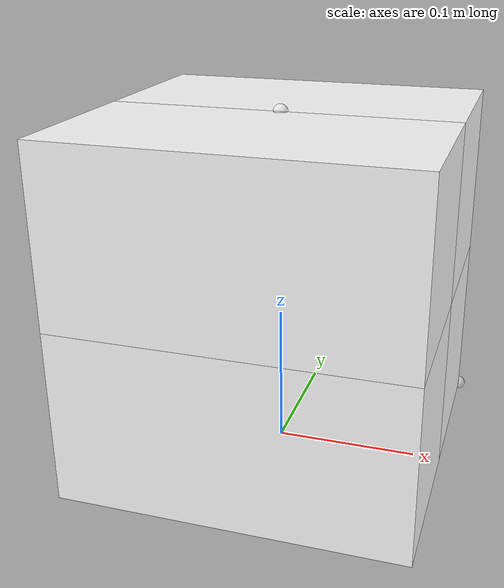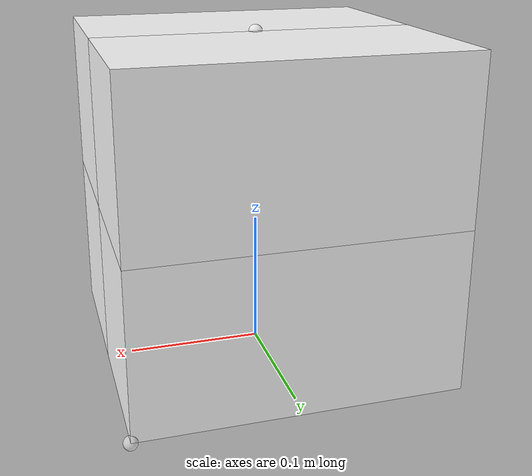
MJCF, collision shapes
<mujoco model="cardbox_b1">
  <default>
    <default class="visual">
      <geom group="1" type="mesh" contype="0" conaffinity="0" density="100"/>
    </default>
    <default class="collision">
      <geom group="0" type="mesh" density="100" solimp="0.95 0.98 0.001" solref="0.004 1" rgba="1 1 1 0.25"/>
    </default>
  </default>
  <asset>
    <texture type="2d" name="T_Cardbox_B3_Albedo" file="textures/T_Cardbox_B3_Albedo.png"/>
    <material name="Cardboard_B1" texture="T_Cardbox_B3_Albedo" specular="0.5" shininess="0.25"/>
    <mesh file="meshes/cardbox_b1.obj" name="cardbox_b1"/>
  </asset>
  <worldbody>
    <body>
      <body name="object">
        <geom material="Cardboard_B1" mesh="cardbox_b1" class="visual"/>
        <geom type="box" pos="-0.0002411858008958909 0.05950367206303654 0.06034306403273426" size="0.11907318134686881 0.05965376605827549 0.06094988849788909" quat="0.00010722777790058494 0.00011960811405354825 0.0005699854852321755 0.9999998246563094" class="collision"/>
        <geom type="box" pos="-0.00021201050054028017 0.05964263111894623 0.18224275833425038" size="0.11907318134686881 0.05965376605827549 0.06094988849788909" quat="0.00010722777790058494 0.00011960811405354825 0.0005699854852321755 0.9999998246563094" class="collision"/>
        <geom type="box" pos="-0.0002667556919653602 -0.059803779787880956 0.06047907419236957" size="0.11907318134686881 0.05965376605827549 0.06094988849788909" quat="0.00010722777790058494 0.00011960811405354825 0.0005699854852321755 0.9999998246563094" class="collision"/>
        <geom type="box" pos="-0.00023758039160974947 -0.05966482073197127 0.1823787684938857" size="0.11907318134686881 0.05965376605827549 0.06094988849788909" quat="0.00010722777790058494 0.00011960811405354825 0.0005699854852321755 0.9999998246563094" class="collision"/>
      </body>
      <site name="bottom_site" pos="0 0 -0.000403" rgba="1 1 1 0.5" size="0.005"/>
      <site name="top_site" pos="0 0 0.243212" rgba="1 1 1 0.5" size="0.005"/>
      <site name="horizontal_radius_site" pos="0.118887 0.119383 0" rgba="1 1 1 0.5" size="0.005"/>
    </body>
  </worldbody>
</mujoco>
